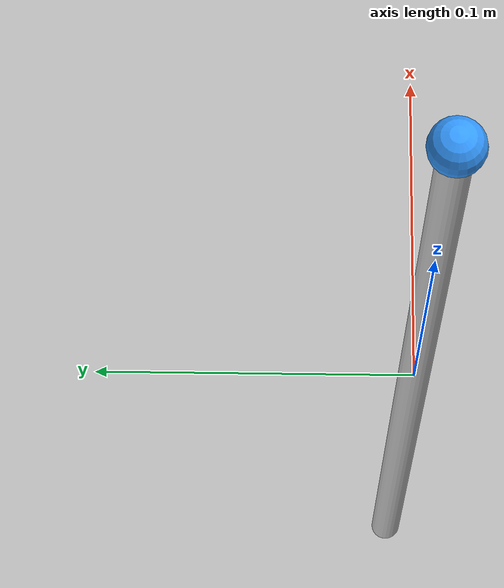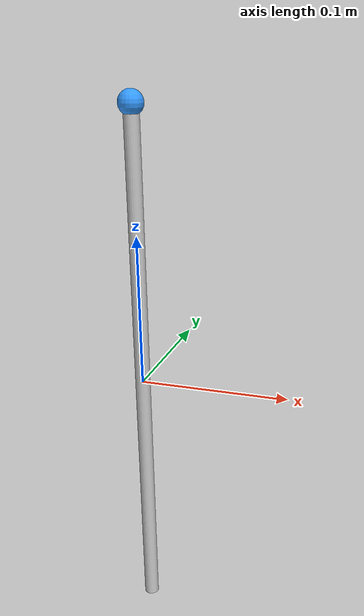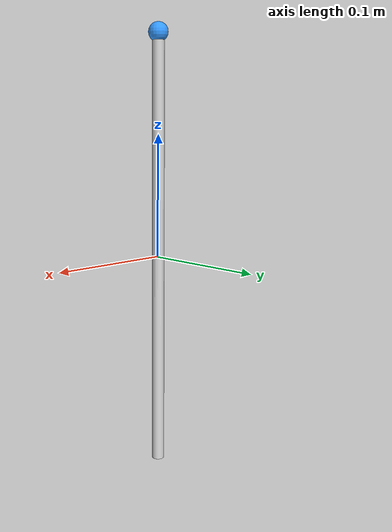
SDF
<?xml version="1.0" ?>
<sdf version="1.8">
  <model name="surgical_instrument">
    <static>false</static>

    <!-- Main shaft - long thin cylinder -->
    <link name="shaft">
      <pose>0 0 0 0 0 0</pose>
      <visual name="shaft_visual">
        <geometry>
          <cylinder>
            <radius>0.005</radius>
            <length>0.35</length>
          </cylinder>
        </geometry>
        <material>
          <ambient>0.7 0.7 0.7 1</ambient>
          <diffuse>0.8 0.8 0.8 1</diffuse>
          <specular>0.9 0.9 0.9 1</specular>
        </material>
      </visual>
      <collision name="shaft_collision">
        <geometry>
          <cylinder>
            <radius>0.005</radius>
            <length>0.35</length>
          </cylinder>
        </geometry>
      </collision>
      <inertial>
        <mass>0.1</mass>
        <inertia>
          <ixx>0.001</ixx><iyy>0.001</iyy><izz>0.0001</izz>
          <ixy>0</ixy><ixz>0</ixz><iyz>0</iyz>
        </inertia>
      </inertial>
    </link>

    <!-- Wrist/tip - small sphere at the end -->
    <link name="tip">
      <pose>0 0 0.18 0 0 0</pose>
      <visual name="tip_visual">
        <geometry>
          <sphere>
            <radius>0.008</radius>
          </sphere>
        </geometry>
        <material>
          <ambient>0.2 0.6 1.0 1</ambient>
          <diffuse>0.2 0.6 1.0 1</diffuse>
          <specular>0.9 0.9 0.9 1</specular>
        </material>
      </visual>
      <collision name="tip_collision">
        <geometry>
          <sphere>
            <radius>0.008</radius>
          </sphere>
        </geometry>
      </collision>
      <inertial>
        <mass>0.02</mass>
        <inertia>
          <ixx>0.0001</ixx><iyy>0.0001</iyy><izz>0.0001</izz>
          <ixy>0</ixy><ixz>0</ixz><iyz>0</iyz>
        </inertia>
      </inertial>
    </link>

    <!-- Joint connecting shaft to tip -->
    <joint name="shaft_tip_joint" type="fixed">
      <parent>shaft</parent>
      <child>tip</child>
    </joint>

  </model>
</sdf>
